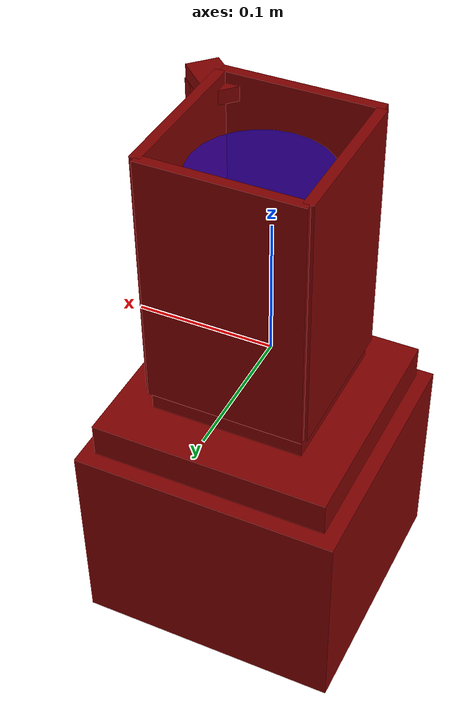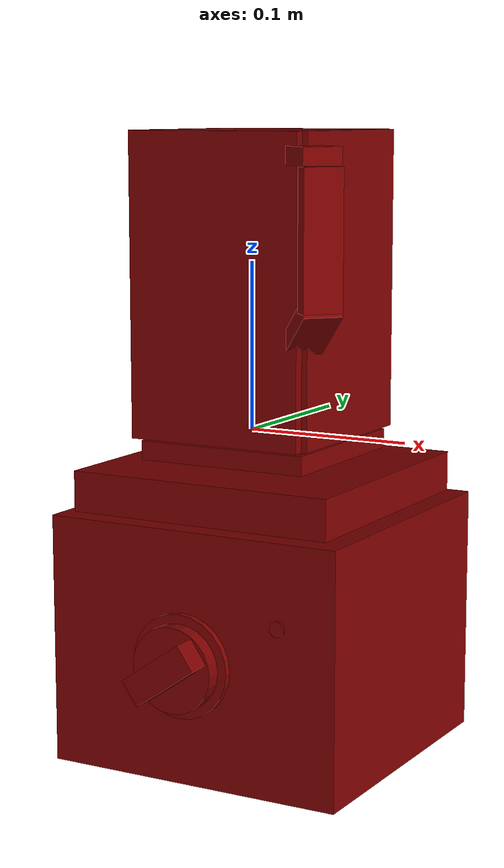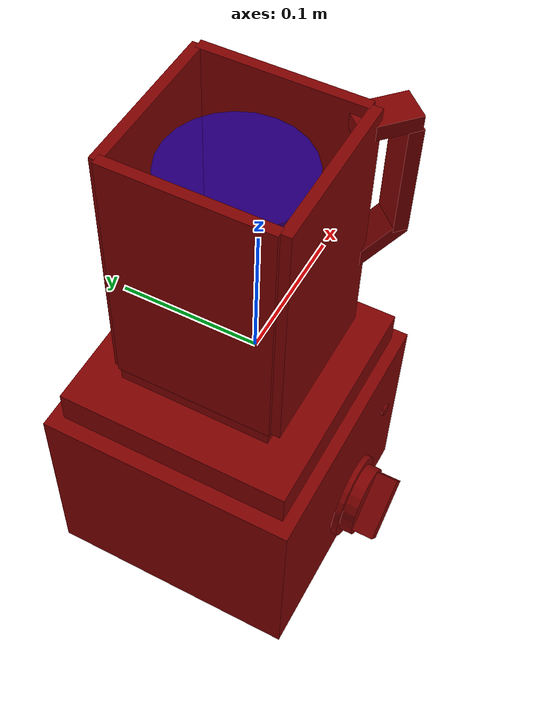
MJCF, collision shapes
<?xml version='1.0' encoding='UTF-8'?>
<mujoco model="model">
  <option timestep="0.002" gravity="0.0 0.0 -9.81"/>
  <compiler angle="radian"/>
  <asset>
    <mesh file="visuals/blade.obj" name="blade_vis"/>
    <mesh file="visuals/Body001.obj" name="Body001_vis"/>
    <mesh file="visuals/power_button.obj" name="power_button_vis"/>
    <mesh file="visuals/pitcher.obj" name="pitcher_vis"/>
    <mesh file="visuals/pitcher_main.obj" name="pitcher_main_vis"/>
    <mesh file="visuals/knob_speed.obj" name="knob_speed_vis"/>
    <texture file="visuals/T_BC001.png" name="Body001_material" type="2d"/>
    <material name="Body001_material" rgba="1 1 1 1.0" texture="Body001_material" shininess="0.5" specular="1"/>
    <texture file="visuals/T_BC001.png" name="power_button_material" type="2d"/>
    <material name="power_button_material" rgba="1 1 1 1.0" texture="power_button_material" shininess="0.5" specular="1"/>
    <texture file="visuals/T_BC001.png" name="pitcher_material" type="2d"/>
    <material name="pitcher_material" rgba="1 1 1 1.0" texture="pitcher_material" shininess="0.5" specular="1"/>
    <texture file="visuals/T_BC001.png" name="blade_material" type="2d"/>
    <material name="blade_material" rgba="1 1 1 1.0" texture="blade_material" shininess="0.5" specular="2"/>
    <texture file="visuals/T_BC001.png" name="pitcher_main_material" type="2d"/>
    <material name="pitcher_main_material" rgba="1 1 1 0.800000011920929" texture="pitcher_main_material" shininess="0.5" specular="0.33333333333333337"/>
    <texture file="visuals/T_BC001.png" name="knob_speed_material" type="2d"/>
    <material name="knob_speed_material" rgba="1 1 1 1.0" texture="knob_speed_material" shininess="0.5" specular="1"/>
  </asset>
  <default>
    <default class="visual">
      <geom conaffinity="0" contype="0" group="1" type="mesh"/>
    </default>
    <default class="collision">
      <geom group="0" rgba="0.5 0 0 0.5" density="1.0" solref="0.004 1" solimp="0.998 0.998 0.001"/>
    </default>
    <default class="spawn">
      <geom group="0" rgba="1 1 1 0.5" contype="0" conaffinity="0"/>
      <site group="0" rgba="1 1 1 0.5"/>
    </default>
    <default class="region">
      <geom group="1" conaffinity="0" contype="0" rgba="0 1 0 0" mass="0"/>
    </default>
  </default>
  <worldbody>
    <body>
      <body name="object">
        <geom mesh="Body001_vis" type="mesh" solimp="0.998 0.998 0.001" solref="0.001 1" friction="0.95 0.3 0.1" class="visual" material="Body001_material"/>
        <geom type="box" pos="-0.00042898 0.01830716 -0.12426873" size="0.09404248744249344 0.09188982844352722 0.07564309239387512" quat="1.0 0.0 0.0 0.0" class="collision"/>
        <geom type="box" pos="-0.00042898 0.01738636 -0.03463487" size="0.08369236439466476 0.08266597986221313 0.01223563402891159" quat="1.0 0.0 0.0 0.0" class="collision"/>
        <body name="power_button">
          <joint axis="0.0 1.0 0.0" pos="0.05931747 -0.07316400 -0.09676713" limited="true" name="power_button_joint" range="0.0 0.001" type="slide" damping="1" frictionloss="1" armature=".01" stiffness="0.2"  springref="-0.1"/>
          <geom mesh="power_button_vis" type="mesh" solimp="0.998 0.998 0.001" solref="0.001 1" friction="0.95 0.3 0.1" class="visual" material="power_button_material"/>
          <geom class="collision" type="cylinder" pos="0.05927947 -0.07713775 -0.09667044" size="0.004644408356398344 0.0007194741046987474" quat="0.7071067094802856 -0.7071068286895752 -1.5700929612083792e-16 -2.2148510003422914e-23" name="power_button_main"/>
        </body>
        <body name="pitcher">
          <geom mesh="pitcher_vis" type="mesh" solimp="0.998 0.998 0.001" solref="0.001 1" friction="0.95 0.3 0.1" class="visual" material="pitcher_material"/>
          <geom class="collision" type="box" pos="0.06211698 -0.04456136 0.16299413" size="0.011408685706555843 0.01944798044860363 0.005156984087079763" quat="0.9165320992469788 0.0 0.0 0.3999611437320709" name="pitcher_handle_2"/>
          <geom class="collision" type="box" pos="0.07395798 -0.05521826 0.11783241" size="0.011408684775233269 0.005029662046581507 0.03966490179300308" quat="0.9165320992469788 0.0 0.0 0.3999611437320709" name="pitcher_handle_1"/>
          <geom class="collision" type="box" pos="0.06330109 -0.04519241 0.06830074" size="0.011408684775233269 0.005029662046581507 0.020796068012714386" quat="0.8157005906105042 0.41792792081832886 0.18237754702568054 0.3559596538543701" name="pitcher_handle_0"/>
          <geom type="box" pos="-0.00042898 0.01620540 -0.01168829" size="0.05380856990814209 0.054080430418252945 0.005756262689828873" quat="1.0 0.0 0.0 0.0" class="collision"/>
          <body name="blade">
            <geom mesh="blade_vis" type="mesh" solimp="0.998 0.998 0.001" solref="0.001 1" friction="0.95 0.3 0.1" class="visual" material="blade_material"/>
            <geom type="cylinder" pos="-0.00076259 0.01659068 0.01732909" size="0.008968064561486244 0.01291128620505333" quat="1.0 0.0 0.0 0.0" class="collision"/>
            <geom type="box" pos="-0.00581280 0.00452992 0.01276770" size="0.003935224376618862 0.006382464896887541 0.0007913180743344128" quat="0.8590430617332458 0.497831791639328 -0.05976736545562744 -0.10313273966312408" class="collision"/>
            <geom type="box" pos="-0.01041935 -0.00741227 0.00744018" size="0.0034937355667352676 0.009759597480297089 0.0007913181325420737" quat="0.9872918128967285 0.0 -0.0 -0.15891800820827484" class="collision"/>
            <geom type="box" pos="0.00393238 0.02946151 0.01276770" size="0.003935224376618862 0.006382465828210115 0.0007913180743344128" quat="0.10313277691602707 0.05976737663149834 0.49783167243003845 0.8590431213378906" class="collision"/>
            <geom type="box" pos="0.00853893 0.04140369 0.00744018" size="0.0034937355667352676 0.009759597480297089 0.0007913181325420737" quat="0.158918097615242 0.0 0.0 0.9872917532920837" class="collision"/>
            <geom type="box" pos="0.01117086 0.01255952 0.01737689" size="0.003935224376618862 0.006382464896887541 0.0007913180743344128" quat="0.819078803062439 0.0 0.0 0.5736810564994812" class="collision"/>
            <geom type="box" pos="0.02087990 0.00881369 0.02663890" size="0.0034937357995659113 0.009759597480297089 0.0007913180743344128" quat="0.6929638385772705 -0.45357760787010193 -0.3069186508655548 0.4689023196697235" class="collision"/>
            <geom type="box" pos="-0.01271869 0.02094228 0.01763733" size="0.003935224376618862 0.006382465362548828 0.0007913180743344128" quat="0.573681116104126 0.0 -0.0 -0.8190787434577942" class="collision"/>
            <geom type="box" pos="-0.02242772 0.02468811 0.02689934" size="0.0034937355667352676 0.009759597480297089 0.0007913181325420737" quat="0.4689021706581116 -0.3069183826446533 0.4535774290561676 -0.6929641962051392" class="collision"/>
          </body>
          <body name="pitcher_main">
            <geom class="region" type="cylinder" size="0.047557055950164795 0.055753376334905624" pos="0.00001552 0.01478123 0.09306583" rgba="0 0 1 0.5" name="reg_int"/>
            <geom mesh="pitcher_main_vis" type="mesh" solimp="0.998 0.998 0.001" solref="0.001 1" friction="0.95 0.3 0.1" class="visual" material="pitcher_main_material"/>
            <geom type="box" pos="-0.00042898 -0.04283430 0.08634938" size="0.05482512712478638 0.0036661962512880564 0.0896683782339096" quat="1.0 0.0 0.0 0.0" class="collision"/>
            <geom type="box" pos="-0.00042898 0.06977503 0.08634938" size="0.05482516810297966 0.0036661962512880564 0.08966850489377975" quat="1.0 0.0 0.0 0.0" class="collision"/>
            <geom type="box" pos="-0.05397190 0.01487471 0.08634938" size="0.0036661906633526087 0.0548253133893013 0.08966860920190811" quat="1.0 0.0 0.0 0.0" class="collision"/>
            <geom type="box" pos="0.05420230 0.01487471 0.08634938" size="0.003666194388642907 0.0548253133893013 0.08966871351003647" quat="1.0 0.0 0.0 0.0" class="collision"/>
            <geom type="box" pos="-0.00042898 0.01470796 -0.00167079" size="0.05482528358697891 0.054755423218011856 0.0027474770322442055" quat="1.0 0.0 0.0 0.0" class="collision"/>
          </body>
        </body>
        <body name="knob_speed">
          <joint axis="0.0 1.0 0.0" pos="-0.00086133 -0.09274757 -0.12523099" limited="true" name="knob_speed_joint" range="0.0 2.792526803190927" type="hinge" damping="0.05" frictionloss="0.1" armature="0.001"/>
          <geom mesh="knob_speed_vis" type="mesh" solimp="0.998 0.998 0.001" solref="0.001 1" friction="0.95 0.3 0.1" class="visual" material="knob_speed_material"/>
          <geom type="cylinder" pos="-0.00072560 -0.08815067 -0.12543755" size="0.02554130367934704 0.004874738398939371" quat="0.7071067094802856 -0.7071068286895752 -1.5700929612083792e-16 -2.2148510003422914e-23" class="collision" density="0.001"/>
          <geom type="cylinder" pos="-0.00072560 -0.08172491 -0.12543755" size="0.03092319332063198 0.0020769285038113594" quat="0.7071067094802856 -0.7071068286895752 -1.5700929612083792e-16 -2.2148510003422914e-23" class="collision" density="0.001"/>
          <geom class="collision" type="box" pos="-0.00050601 -0.10061527 -0.12463681" size="0.02245170623064041 0.0076528736390173435 0.008579360321164131" quat="0.9537169337272644 0.0 -0.30070582032203674 0.0" name="knob_speed_main" density="0.001"/>
        </body>
        <geom class="region" name="reg_main" type="box" pos="6.000000000311312e-08 0.0144993 -6.499999999354245e-08" size="0.09820691000000001 0.09540155 0.201541105"/>
      </body>
      <site rgba="0 1 0 0" size="0.005" pos="0.00196234 0.01485872 0.18078268" name="anchor_site"/>
    </body>
  </worldbody>
  <actuator>
    <motor name="power_button_joint_actuator" joint="power_button_joint" gear="0.5"/>
    <motor name="knob_speed_joint_actuator" joint="knob_speed_joint" gear="10"/>
  </actuator>
</mujoco>
